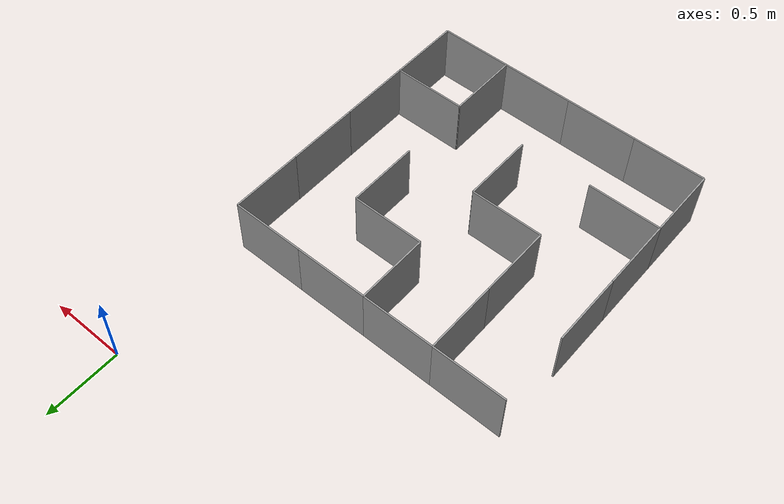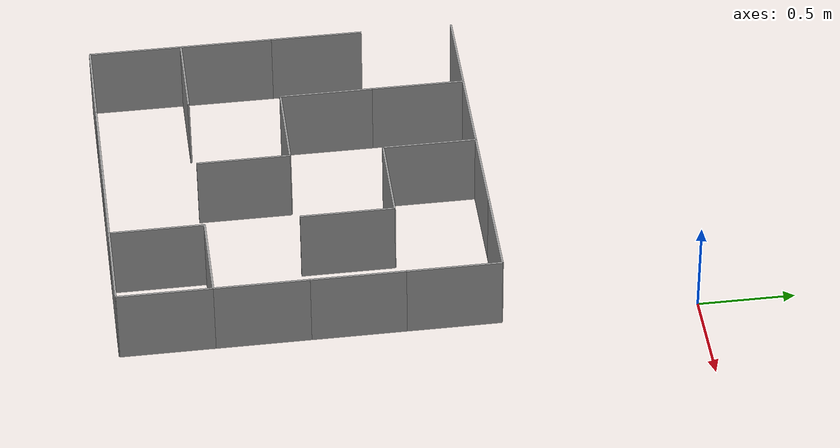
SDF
<sdf version="1.6">
  <!--Generated maze model-->
  <model name="maze">
    <static>1</static>
    <link name="wall_0">
      <pose>0.0 -1.24 0.2 0 0 0</pose>
      <collision name="wall_0_collision">
        <geometry>
          <box>
            <size>0.01 0.48 0.4</size>
          </box>
        </geometry>
      </collision>
      <visual name="wall_0_visual">
        <geometry>
          <box>
            <size>0.01 0.48 0.4</size>
          </box>
        </geometry>
        <material>
          <script>
            <uri>file://media/materials/scripts/gazebo.material</uri>
            <name>Gazebo/Grey</name>
          </script>
        </material>
        <meta>
          <meta>0</meta>
        </meta>
      </visual>
    </link>
    <link name="wall_1">
      <pose>0.0 -1.72 0.2 0 0 0</pose>
      <collision name="wall_1_collision">
        <geometry>
          <box>
            <size>0.01 0.48 0.4</size>
          </box>
        </geometry>
      </collision>
      <visual name="wall_1_visual">
        <geometry>
          <box>
            <size>0.01 0.48 0.4</size>
          </box>
        </geometry>
        <material>
          <script>
            <uri>file://media/materials/scripts/gazebo.material</uri>
            <name>Gazebo/Grey</name>
          </script>
        </material>
        <meta>
          <meta>0</meta>
        </meta>
      </visual>
    </link>
    <link name="wall_2">
      <pose>0.0 -2.2 0.2 0 0 0</pose>
      <collision name="wall_2_collision">
        <geometry>
          <box>
            <size>0.01 0.48 0.4</size>
          </box>
        </geometry>
      </collision>
      <visual name="wall_2_visual">
        <geometry>
          <box>
            <size>0.01 0.48 0.4</size>
          </box>
        </geometry>
        <material>
          <script>
            <uri>file://media/materials/scripts/gazebo.material</uri>
            <name>Gazebo/Grey</name>
          </script>
        </material>
        <meta>
          <meta>0</meta>
        </meta>
      </visual>
    </link>
    <link name="wall_3">
      <pose>0.0 -2.6799999999999997 0.2 0 0 0</pose>
      <collision name="wall_3_collision">
        <geometry>
          <box>
            <size>0.01 0.48 0.4</size>
          </box>
        </geometry>
      </collision>
      <visual name="wall_3_visual">
        <geometry>
          <box>
            <size>0.01 0.48 0.4</size>
          </box>
        </geometry>
        <material>
          <script>
            <uri>file://media/materials/scripts/gazebo.material</uri>
            <name>Gazebo/Grey</name>
          </script>
        </material>
        <meta>
          <meta>0</meta>
        </meta>
      </visual>
    </link>
    <link name="wall_4">
      <pose>-0.48 -1.72 0.2 0 0 0</pose>
      <collision name="wall_4_collision">
        <geometry>
          <box>
            <size>0.01 0.48 0.4</size>
          </box>
        </geometry>
      </collision>
      <visual name="wall_4_visual">
        <geometry>
          <box>
            <size>0.01 0.48 0.4</size>
          </box>
        </geometry>
        <material>
          <script>
            <uri>file://media/materials/scripts/gazebo.material</uri>
            <name>Gazebo/Grey</name>
          </script>
        </material>
        <meta>
          <meta>0</meta>
        </meta>
      </visual>
    </link>
    <link name="wall_5">
      <pose>-0.48 -2.6799999999999997 0.2 0 0 0</pose>
      <collision name="wall_5_collision">
        <geometry>
          <box>
            <size>0.01 0.48 0.4</size>
          </box>
        </geometry>
      </collision>
      <visual name="wall_5_visual">
        <geometry>
          <box>
            <size>0.01 0.48 0.4</size>
          </box>
        </geometry>
        <material>
          <script>
            <uri>file://media/materials/scripts/gazebo.material</uri>
            <name>Gazebo/Grey</name>
          </script>
        </material>
        <meta>
          <meta>0</meta>
        </meta>
      </visual>
    </link>
    <link name="wall_6">
      <pose>-0.96 -1.24 0.2 0 0 0</pose>
      <collision name="wall_6_collision">
        <geometry>
          <box>
            <size>0.01 0.48 0.4</size>
          </box>
        </geometry>
      </collision>
      <visual name="wall_6_visual">
        <geometry>
          <box>
            <size>0.01 0.48 0.4</size>
          </box>
        </geometry>
        <material>
          <script>
            <uri>file://media/materials/scripts/gazebo.material</uri>
            <name>Gazebo/Grey</name>
          </script>
        </material>
        <meta>
          <meta>0</meta>
        </meta>
      </visual>
    </link>
    <link name="wall_7">
      <pose>-0.96 -2.2 0.2 0 0 0</pose>
      <collision name="wall_7_collision">
        <geometry>
          <box>
            <size>0.01 0.48 0.4</size>
          </box>
        </geometry>
      </collision>
      <visual name="wall_7_visual">
        <geometry>
          <box>
            <size>0.01 0.48 0.4</size>
          </box>
        </geometry>
        <material>
          <script>
            <uri>file://media/materials/scripts/gazebo.material</uri>
            <name>Gazebo/Grey</name>
          </script>
        </material>
        <meta>
          <meta>0</meta>
        </meta>
      </visual>
    </link>
    <link name="wall_8">
      <pose>-1.44 -1.24 0.2 0 0 0</pose>
      <collision name="wall_8_collision">
        <geometry>
          <box>
            <size>0.01 0.48 0.4</size>
          </box>
        </geometry>
      </collision>
      <visual name="wall_8_visual">
        <geometry>
          <box>
            <size>0.01 0.48 0.4</size>
          </box>
        </geometry>
        <material>
          <script>
            <uri>file://media/materials/scripts/gazebo.material</uri>
            <name>Gazebo/Grey</name>
          </script>
        </material>
        <meta>
          <meta>0</meta>
        </meta>
      </visual>
    </link>
    <link name="wall_9">
      <pose>-1.44 -1.72 0.2 0 0 0</pose>
      <collision name="wall_9_collision">
        <geometry>
          <box>
            <size>0.01 0.48 0.4</size>
          </box>
        </geometry>
      </collision>
      <visual name="wall_9_visual">
        <geometry>
          <box>
            <size>0.01 0.48 0.4</size>
          </box>
        </geometry>
        <material>
          <script>
            <uri>file://media/materials/scripts/gazebo.material</uri>
            <name>Gazebo/Grey</name>
          </script>
        </material>
        <meta>
          <meta>0</meta>
        </meta>
      </visual>
    </link>
    <link name="wall_10">
      <pose>-1.92 -1.72 0.2 0 0 0</pose>
      <collision name="wall_10_collision">
        <geometry>
          <box>
            <size>0.01 0.48 0.4</size>
          </box>
        </geometry>
      </collision>
      <visual name="wall_10_visual">
        <geometry>
          <box>
            <size>0.01 0.48 0.4</size>
          </box>
        </geometry>
        <material>
          <script>
            <uri>file://media/materials/scripts/gazebo.material</uri>
            <name>Gazebo/Grey</name>
          </script>
        </material>
        <meta>
          <meta>0</meta>
        </meta>
      </visual>
    </link>
    <link name="wall_11">
      <pose>-1.92 -2.2 0.2 0 0 0</pose>
      <collision name="wall_11_collision">
        <geometry>
          <box>
            <size>0.01 0.48 0.4</size>
          </box>
        </geometry>
      </collision>
      <visual name="wall_11_visual">
        <geometry>
          <box>
            <size>0.01 0.48 0.4</size>
          </box>
        </geometry>
        <material>
          <script>
            <uri>file://media/materials/scripts/gazebo.material</uri>
            <name>Gazebo/Grey</name>
          </script>
        </material>
        <meta>
          <meta>0</meta>
        </meta>
      </visual>
    </link>
    <link name="wall_12">
      <pose>-1.92 -2.6799999999999997 0.2 0 0 0</pose>
      <collision name="wall_12_collision">
        <geometry>
          <box>
            <size>0.01 0.48 0.4</size>
          </box>
        </geometry>
      </collision>
      <visual name="wall_12_visual">
        <geometry>
          <box>
            <size>0.01 0.48 0.4</size>
          </box>
        </geometry>
        <material>
          <script>
            <uri>file://media/materials/scripts/gazebo.material</uri>
            <name>Gazebo/Grey</name>
          </script>
        </material>
        <meta>
          <meta>0</meta>
        </meta>
      </visual>
    </link>
    <link name="wall_13">
      <pose>-0.24 -1.0 0.2 0 0 0</pose>
      <collision name="wall_13_collision">
        <geometry>
          <box>
            <size>0.48 0.01 0.4</size>
          </box>
        </geometry>
      </collision>
      <visual name="wall_13_visual">
        <geometry>
          <box>
            <size>0.48 0.01 0.4</size>
          </box>
        </geometry>
        <material>
          <script>
            <uri>file://media/materials/scripts/gazebo.material</uri>
            <name>Gazebo/Grey</name>
          </script>
        </material>
        <meta>
          <meta>0</meta>
        </meta>
      </visual>
    </link>
    <link name="wall_14">
      <pose>-0.24 -2.44 0.2 0 0 0</pose>
      <collision name="wall_14_collision">
        <geometry>
          <box>
            <size>0.48 0.01 0.4</size>
          </box>
        </geometry>
      </collision>
      <visual name="wall_14_visual">
        <geometry>
          <box>
            <size>0.48 0.01 0.4</size>
          </box>
        </geometry>
        <material>
          <script>
            <uri>file://media/materials/scripts/gazebo.material</uri>
            <name>Gazebo/Grey</name>
          </script>
        </material>
        <meta>
          <meta>0</meta>
        </meta>
      </visual>
    </link>
    <link name="wall_15">
      <pose>-0.24 -2.92 0.2 0 0 0</pose>
      <collision name="wall_15_collision">
        <geometry>
          <box>
            <size>0.48 0.01 0.4</size>
          </box>
        </geometry>
      </collision>
      <visual name="wall_15_visual">
        <geometry>
          <box>
            <size>0.48 0.01 0.4</size>
          </box>
        </geometry>
        <material>
          <script>
            <uri>file://media/materials/scripts/gazebo.material</uri>
            <name>Gazebo/Grey</name>
          </script>
        </material>
        <meta>
          <meta>0</meta>
        </meta>
      </visual>
    </link>
    <link name="wall_16">
      <pose>-0.72 -1.0 0.2 0 0 0</pose>
      <collision name="wall_16_collision">
        <geometry>
          <box>
            <size>0.48 0.01 0.4</size>
          </box>
        </geometry>
      </collision>
      <visual name="wall_16_visual">
        <geometry>
          <box>
            <size>0.48 0.01 0.4</size>
          </box>
        </geometry>
        <material>
          <script>
            <uri>file://media/materials/scripts/gazebo.material</uri>
            <name>Gazebo/Grey</name>
          </script>
        </material>
        <meta>
          <meta>0</meta>
        </meta>
      </visual>
    </link>
    <link name="wall_17">
      <pose>-0.72 -1.48 0.2 0 0 0</pose>
      <collision name="wall_17_collision">
        <geometry>
          <box>
            <size>0.48 0.01 0.4</size>
          </box>
        </geometry>
      </collision>
      <visual name="wall_17_visual">
        <geometry>
          <box>
            <size>0.48 0.01 0.4</size>
          </box>
        </geometry>
        <material>
          <script>
            <uri>file://media/materials/scripts/gazebo.material</uri>
            <name>Gazebo/Grey</name>
          </script>
        </material>
        <meta>
          <meta>0</meta>
        </meta>
      </visual>
    </link>
    <link name="wall_18">
      <pose>-0.72 -2.92 0.2 0 0 0</pose>
      <collision name="wall_18_collision">
        <geometry>
          <box>
            <size>0.48 0.01 0.4</size>
          </box>
        </geometry>
      </collision>
      <visual name="wall_18_visual">
        <geometry>
          <box>
            <size>0.48 0.01 0.4</size>
          </box>
        </geometry>
        <material>
          <script>
            <uri>file://media/materials/scripts/gazebo.material</uri>
            <name>Gazebo/Grey</name>
          </script>
        </material>
        <meta>
          <meta>0</meta>
        </meta>
      </visual>
    </link>
    <link name="wall_19">
      <pose>-1.2 -1.0 0.2 0 0 0</pose>
      <collision name="wall_19_collision">
        <geometry>
          <box>
            <size>0.48 0.01 0.4</size>
          </box>
        </geometry>
      </collision>
      <visual name="wall_19_visual">
        <geometry>
          <box>
            <size>0.48 0.01 0.4</size>
          </box>
        </geometry>
        <material>
          <script>
            <uri>file://media/materials/scripts/gazebo.material</uri>
            <name>Gazebo/Grey</name>
          </script>
        </material>
        <meta>
          <meta>0</meta>
        </meta>
      </visual>
    </link>
    <link name="wall_20">
      <pose>-1.2 -1.96 0.2 0 0 0</pose>
      <collision name="wall_20_collision">
        <geometry>
          <box>
            <size>0.48 0.01 0.4</size>
          </box>
        </geometry>
      </collision>
      <visual name="wall_20_visual">
        <geometry>
          <box>
            <size>0.48 0.01 0.4</size>
          </box>
        </geometry>
        <material>
          <script>
            <uri>file://media/materials/scripts/gazebo.material</uri>
            <name>Gazebo/Grey</name>
          </script>
        </material>
        <meta>
          <meta>0</meta>
        </meta>
      </visual>
    </link>
    <link name="wall_21">
      <pose>-1.2 -2.92 0.2 0 0 0</pose>
      <collision name="wall_21_collision">
        <geometry>
          <box>
            <size>0.48 0.01 0.4</size>
          </box>
        </geometry>
      </collision>
      <visual name="wall_21_visual">
        <geometry>
          <box>
            <size>0.48 0.01 0.4</size>
          </box>
        </geometry>
        <material>
          <script>
            <uri>file://media/materials/scripts/gazebo.material</uri>
            <name>Gazebo/Grey</name>
          </script>
        </material>
        <meta>
          <meta>0</meta>
        </meta>
      </visual>
    </link>
    <link name="wall_22">
      <pose>-1.68 -1.0 0.2 0 0 0</pose>
      <collision name="wall_22_collision">
        <geometry>
          <box>
            <size>0.48 0.01 0.4</size>
          </box>
        </geometry>
      </collision>
      <visual name="wall_22_visual">
        <geometry>
          <box>
            <size>0.48 0.01 0.4</size>
          </box>
        </geometry>
        <material>
          <script>
            <uri>file://media/materials/scripts/gazebo.material</uri>
            <name>Gazebo/Grey</name>
          </script>
        </material>
        <meta>
          <meta>0</meta>
        </meta>
      </visual>
    </link>
    <link name="wall_23">
      <pose>-1.68 -2.44 0.2 0 0 0</pose>
      <collision name="wall_23_collision">
        <geometry>
          <box>
            <size>0.48 0.01 0.4</size>
          </box>
        </geometry>
      </collision>
      <visual name="wall_23_visual">
        <geometry>
          <box>
            <size>0.48 0.01 0.4</size>
          </box>
        </geometry>
        <material>
          <script>
            <uri>file://media/materials/scripts/gazebo.material</uri>
            <name>Gazebo/Grey</name>
          </script>
        </material>
        <meta>
          <meta>0</meta>
        </meta>
      </visual>
    </link>
    <link name="wall_24">
      <pose>-1.68 -2.92 0.2 0 0 0</pose>
      <collision name="wall_24_collision">
        <geometry>
          <box>
            <size>0.48 0.01 0.4</size>
          </box>
        </geometry>
      </collision>
      <visual name="wall_24_visual">
        <geometry>
          <box>
            <size>0.48 0.01 0.4</size>
          </box>
        </geometry>
        <material>
          <script>
            <uri>file://media/materials/scripts/gazebo.material</uri>
            <name>Gazebo/Grey</name>
          </script>
        </material>
        <meta>
          <meta>0</meta>
        </meta>
      </visual>
    </link>
  </model>
</sdf>
